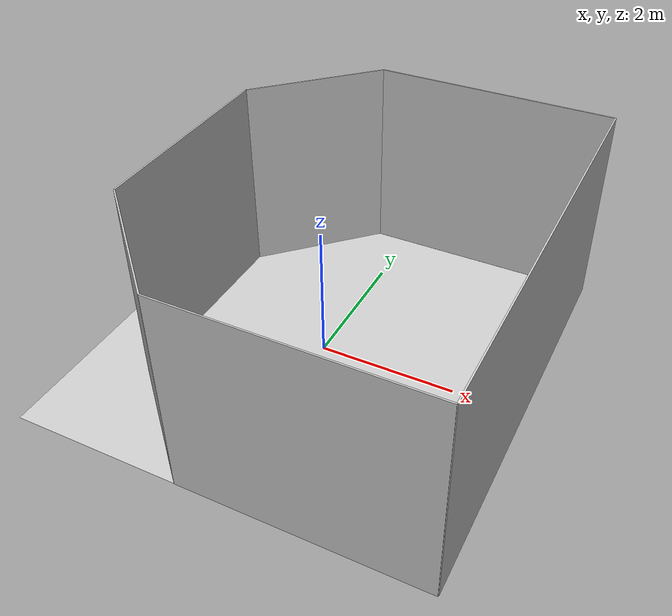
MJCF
<mujoco model="multi_table_arena">
  <asset>
    <texture builtin="gradient" height="256" rgb1=".9 .9 1." rgb2=".2 .3 .4" type="skybox" width="256"/>
    <texture file="../textures/light-gray-floor-tile.png" type="2d" name="texplane"/>
    <material name="floorplane" reflectance="0.01" shininess="0.0" specular="0.0" texrepeat="2 2" texture="texplane" texuniform="true"/>
    <!-- ceramic table texture and material-->
    <texture file="../textures/ceramic.png" type="cube" name="tex-ceramic"/>
    <material name="table_ceramic" reflectance="0.0" shininess="0.0" specular="0.2" texrepeat="1 1" texture="tex-ceramic" />
    <!-- steel legs -->
    <texture file="../textures/steel-brushed.png" type="cube" name="tex-steel-brushed"/>
    <material name="table_legs_metal" reflectance="0.8" shininess="0.8" texrepeat="1 1" texture="tex-steel-brushed" />
    <!-- plaster walls -->
    <texture file="../textures/light-gray-plaster.png" type="2d" name="tex-light-gray-plaster"/>
    <material name="walls_mat" reflectance="0.0" shininess="0.1" specular="0.1" texrepeat="3 3" texture="tex-light-gray-plaster" texuniform="true" />
    <!-- added table texture and material for domain randomization -->
    <texture  name="textable" builtin="flat" height="512" width="512" rgb1="0.5 0.5 0.5" rgb2="0.5 0.5 0.5"/>
    <material name="table_mat" texture="textable" />

  </asset>
  <worldbody>
    <!-- Floor -->
    <geom condim="3" group="1" material="floorplane" name="floor" pos="0 0 0" size="3 3 .125" type="plane"/>
    <!-- Walls (visual only) -->
    <geom pos="-1.25 2.25 1.5" quat="0.6532815 0.6532815 0.2705981 0.2705981" size="1.06 1.5 0.01" type="box" conaffinity="0" contype="0" group="1" name="wall_leftcorner_visual" material="walls_mat"/>
    <geom pos="-1.25 -2.25 1.5" quat="0.6532815 0.6532815 -0.2705981 -0.2705981" size="1.06 1.5 0.01" type="box" conaffinity="0" contype="0" group="1" name="wall_rightcorner_visual" material="walls_mat"/>
    <geom pos="1.25 3 1.5" quat="0.7071 0.7071 0 0" size="1.75 1.5 0.01" type="box" conaffinity="0" contype="0" group="1" name="wall_left_visual" material="walls_mat"/>
    <geom pos="1.25 -3 1.5" quat="0.7071 -0.7071 0 0" size="1.75 1.5 0.01" type="box" conaffinity="0" contype="0" group="1" name="wall_right_visual" material="walls_mat"/>
    <geom pos="-2 0 1.5" quat="0.5 0.5 0.5 0.5" size="1.5 1.5 0.01" type="box" conaffinity="0" contype="0" group="1" name="wall_rear_visual" material="walls_mat"/>
    <geom pos="3 0 1.5" quat="0.5 0.5 -0.5 -0.5" size="3 1.5 0.01" type="box" conaffinity="0" contype="0" group="1" name="wall_front_visual" material="walls_mat"/>
    <!-- Tables will be procedurally generated -->

    <light name="light1" diffuse=".8 .8 .8" dir="0 -.15 -1" directional="false" pos="1 1 4.0" specular="0.3 0.3 0.3" castshadow="false"/>
    <light name="light2" diffuse=".8 .8 .8" dir="0 -.15 -1" directional="false" pos="-3. -3. 4.0" specular="0.3 0.3 0.3" castshadow="false"/>
    <!-- front view -->
    <camera mode="fixed" name="frontview" pos="1.6 0 1.45" quat="0.56 0.43 0.43 0.56"/>
    <!-- bird view -->
    <camera mode="fixed" name="birdview" pos="-0.2 0 3.0" quat="0.7071 0 0 0.7071"/>
    <!-- agent view -->
    <camera mode="fixed" name="agentview" pos="0.5 0 1.35" quat="0.653 0.271 0.271 0.653"/>
    <!-- side view -->
    <camera mode="fixed" name="sideview" pos="-0.05651774593317116 1.2761224129427358 1.4879572214102434" quat="0.009905065491771751 0.006877963156909582 0.5912228352893879 0.806418094001364" />
    <!-- Additional camera views from JSON -->
    <camera mode="fixed" name="true_ex_01" pos="-0.249761 -0.427006 1.355835" quat="0.893624 0.364731 -0.098835 -0.242155"/>
    <camera mode="fixed" name="true_ex_02" pos="0.308901 0.068559 1.493616" quat="0.610849 0.136115 0.169638 0.761288"/>
    <camera mode="fixed" name="true_ex_03" pos="0.438611 0.041335 1.408342" quat="0.636486 0.219027 0.240639 0.699289"/>
    <camera mode="fixed" name="true_ex_04" pos="0.483191 -0.025819 1.36729" quat="0.67508 0.266358 0.252505 0.63997"/>
    <camera mode="fixed" name="true_ex_05" pos="0.521853 -0.10077 1.312329" quat="0.701061 0.321421 0.265292 0.578638"/>
    <camera mode="fixed" name="true_ex_06" pos="0.590582 -0.150768 1.184573" quat="0.676798 0.406967 0.316125 0.525726"/>
    <camera mode="fixed" name="true_ex_07" pos="-0.202204 0.466534 1.340409" quat="-0.186808 -0.079618 0.383907 0.900766"/>

    <camera mode="fixed" name="view_00" pos="0.098103 -0.409149 1.424856" quat="0.945063 0.305082 0.036064 0.111717"/>
    <camera mode="fixed" name="view_01" pos="0.202127 -0.408044 1.395121" quat="0.915911 0.330377 0.077343 0.214419"/>
    <camera mode="fixed" name="view_02" pos="0.047318 -0.481147 1.367716" quat="0.929257 0.366171 0.017962 0.045584"/>
    <camera mode="fixed" name="view_03" pos="0.020398 -0.55868 1.274114" quat="0.893713 0.448267 0.008181 0.01631"/>
    <camera mode="fixed" name="view_04" pos="0.217512 -0.548249 1.223437" quat="0.857712 0.478633 0.091478 0.163929"/>
    <camera mode="fixed" name="view_05" pos="0.25232 -0.338008 1.424009" quat="0.902852 0.292458 0.097121 0.299823"/>
    <camera mode="fixed" name="view_06" pos="0.397262 -0.177139 1.413133" quat="0.794655 0.268602 0.174326 0.515739"/>
    <camera mode="fixed" name="view_07" pos="0.327817 -0.357177 1.366327" quat="0.86649 0.342876 0.133495 0.337357"/>
    <camera mode="fixed" name="view_08" pos="0.398516 -0.372237 1.293858" quat="0.827092 0.396509 0.172212 0.359224"/>
    <camera mode="fixed" name="view_09" pos="0.450426 -0.357643 1.248867" quat="0.795746 0.421549 0.203558 0.384251"/>
    <camera mode="fixed" name="view_10" pos="0.37377 0.026312 1.458662" quat="0.657166 0.181721 0.194963 0.705053"/>
    <camera mode="fixed" name="view_11" pos="0.439411 -0.057715 1.406051" quat="0.710194 0.246453 0.216199 0.623012"/>
    <camera mode="fixed" name="view_12" pos="0.513018 -0.014164 1.33487" quat="0.657873 0.28461 0.276861 0.63996"/>
    <camera mode="fixed" name="view_13" pos="0.535215 -0.102211 1.294459" quat="0.69504 0.332732 0.275202 0.574867"/>
    <camera mode="fixed" name="view_14" pos="0.565061 0.032848 1.263494" quat="0.61051 0.313466 0.332217 0.64703"/>
    <camera mode="fixed" name="view_15" pos="0.288964 0.241368 1.457442" quat="0.408126 0.11357 0.242841 0.872676"/>
    <camera mode="fixed" name="view_16" pos="0.4437 0.164498 1.378091" quat="0.533604 0.203609 0.292637 0.766925"/>
    <camera mode="fixed" name="view_17" pos="0.311193 0.409429 1.333621" quat="0.292867 0.127124 0.377335 0.869303"/>
    <camera mode="fixed" name="view_18" pos="0.461222 0.255303 1.317845" quat="0.462688 0.209221 0.354947 0.784958"/>
    <camera mode="fixed" name="view_19" pos="0.427094 0.393179 1.239855" quat="0.353481 0.190802 0.434993 0.805871"/>
    <camera mode="fixed" name="view_20" pos="0.207138 0.336611 1.444322" quat="0.261088 0.077459 0.273672 0.922462"/>
    <camera mode="fixed" name="view_21" pos="0.268679 0.387125 1.380048" quat="0.279317 0.105917 0.338375 0.892337"/>
    <camera mode="fixed" name="view_22" pos="0.227941 0.453527 1.341426" quat="0.212376 0.090264 0.380598 0.895485"/>
    <camera mode="fixed" name="view_23" pos="0.228469 0.494941 1.294126" quat="0.193491 0.092701 0.422009 0.880838"/>
    <camera mode="fixed" name="view_24" pos="0.1605 0.548211 1.255252" quat="0.125781 0.065738 0.458505 0.877286"/>
    <!-- Selected views from camera_views_180d_test.json with renamed cameras -->
    <!-- view_09 -> in_01 -->
    <camera mode="fixed" name="in_01" pos="0.191342 -0.46194 1.35" quat="0.905873 0.375944 0.07478 0.180189"/>

    <!-- view_15 -> in_02 -->
    <camera mode="fixed" name="in_02" pos="0.380203 -0.324724 1.35" quat="0.838779 0.3481 0.160476 0.386683"/>
    <!-- in_03 -->
    <camera mode="fixed" name="in_03" pos="0.5 0 1.35" quat="0.653 0.271 0.271 0.653"/>
    <!-- in_04 -->
    <camera mode="fixed" name="in_04" pos="0.380203 0.324724 1.35" quat="0.386683 0.160476 0.3481 0.838779"/>

    <!-- in_05 -->
    <camera mode="fixed" name="in_05" pos="0.191342 0.46194 1.35" quat="0.180189 0.07478 0.375944 0.905873"/>

    <!-- Extrapolation views from robomimic/test.json -->
    <!-- view_00 -> extrapolation_01 -->
    <camera mode="fixed" name="ex_01" pos="-0.404508 -0.293893 1.35" quat="0.822951 0.341531 -0.174019 -0.419315"/>

    <!-- view_01 -> ex_02 -->
    <camera mode="fixed" name="ex_02" pos="-0.293893 -0.404508 1.35" quat="0.878415 0.364549 -0.118449 -0.285414"/>

    <!-- view_15 -> ex_03 -->
    <camera mode="fixed" name="ex_03" pos="-0.293893 0.404508 1.35" quat="-0.285414 -0.118449 0.364549 0.878415"/>

    <!-- view_16 -> ex_04 -->
    <camera mode="fixed" name="ex_04" pos="-0.404508 0.293893 1.35" quat="-0.419315 -0.174019 0.341531 0.822951"/>

        <!-- Selected views from test_hard.json -->
    <!-- view_00 -> ex_hard_01 -->
    <camera mode="fixed" name="ex_hard_01" pos="-0.139232 -0.335862 1.46596" quat="0.94782 0.252035 -0.050171 -0.188675"/>

    <!-- view_02 -> ex_hard_02 -->
    <camera mode="fixed" name="ex_hard_02" pos="-0.218463 -0.372609 1.41569" quat="0.915148 0.306325 -0.083179 -0.248497"/>

    <!-- view_17 -> in_hard_01 -->
    <camera mode="fixed" name="in_hard_01" pos="0.485554 -0.169442 1.333621" quat="0.747898 0.324637 0.230549 0.531138"/>

    <!-- view_23 -> in_hard_02 -->
    <camera mode="fixed" name="in_hard_02" pos="0.448118 -0.053264 1.398852" quat="0.704355 0.250796 0.222752 0.625593"/>

    <!-- view_27 -> in_hard_03 -->
    <camera mode="fixed" name="in_hard_03" pos="0.62488 0.038486 1.146057" quat="0.575783 0.37113 0.394691 0.612336"/>

    <!-- view_33 -> in_hard_04 -->
    <camera mode="fixed" name="in_hard_04" pos="0.545544 0.232394 1.217607" quat="0.480176 0.271067 0.410107 0.726475"/>

    <!-- view_43 -> ex_hard_03 -->
    <camera mode="fixed" name="ex_hard_03" pos="-0.178479 0.361669 1.438369" quat="-0.217339 -0.066246 0.283936 0.931534"/>

    <!-- view_48 -> ex_hard_04 -->
    <camera mode="fixed" name="ex_hard_04" pos="-0.197572 0.579753 1.178122" quat="-0.139659 -0.084985 0.512845 0.842771"/>

    <!-- view_25 -> in_hard_05 -->
    <camera mode="fixed" name="in_hard_05" pos="0.531457 0.16152 1.279426" quat="0.533551 0.264442 0.356754 0.719805"/>
<!-- agentview_mug_1 cameras -->
    <camera mode="fixed" name="agentview_mug_1_00" pos="0.742039 -0.012952 1.532522" quat="0.65139 0.290546 0.285519 0.640119"/>
    <camera mode="fixed" name="agentview_mug_1_01" pos="0.752963 -0.013143 1.519473" quat="0.64883 0.29622 0.291094 0.637603"/>
    <camera mode="fixed" name="agentview_mug_1_02" pos="0.763658 -0.01333 1.506236" quat="0.64622 0.30187 0.296647 0.635039"/>
    <camera mode="fixed" name="agentview_mug_1_03" pos="0.742152 0.0 1.532522" quat="0.645779 0.288044 0.288044 0.645779"/>
    <camera mode="fixed" name="agentview_mug_1_04" pos="0.753078 0.0 1.519473" quat="0.643241 0.293668 0.293668 0.643241"/>
    <camera mode="fixed" name="agentview_mug_1_05" pos="0.763775 0.0 1.506236" quat="0.640654 0.29927 0.29927 0.640654"/>
    <camera mode="fixed" name="agentview_mug_1_06" pos="0.742039 0.012952 1.532522" quat="0.640119 0.285519 0.290546 0.65139"/>
    <camera mode="fixed" name="agentview_mug_1_07" pos="0.752963 0.013143 1.519473" quat="0.637603 0.291094 0.29622 0.64883"/>
    <camera mode="fixed" name="agentview_mug_1_08" pos="0.763658 0.01333 1.506236" quat="0.635039 0.296647 0.30187 0.64622"/>
    <!-- agentview_mug_2 cameras -->
    <camera mode="fixed" name="agentview_mug_2_00" pos="0.730555 -0.025512 1.545378" quat="0.659483 0.287283 0.277426 0.636856"/>
    <camera mode="fixed" name="agentview_mug_2_01" pos="0.752619 -0.026282 1.519473" quat="0.654369 0.298749 0.288498 0.631917"/>
    <camera mode="fixed" name="agentview_mug_2_02" pos="0.773767 -0.027021 1.492814" quat="0.649056 0.310123 0.299483 0.626786"/>
    <camera mode="fixed" name="agentview_mug_2_03" pos="0.731 0.0 1.545378" quat="0.648268 0.282397 0.282397 0.648268"/>
    <camera mode="fixed" name="agentview_mug_2_04" pos="0.753078 0.0 1.519473" quat="0.643241 0.293668 0.293668 0.643241"/>
    <camera mode="fixed" name="agentview_mug_2_05" pos="0.774239 0.0 1.492814" quat="0.638018 0.304849 0.304849 0.638018"/>
    <camera mode="fixed" name="agentview_mug_2_06" pos="0.730555 0.025512 1.545378" quat="0.636856 0.277426 0.287283 0.659483"/>
    <camera mode="fixed" name="agentview_mug_2_07" pos="0.752619 0.026282 1.519473" quat="0.631917 0.288498 0.298749 0.654369"/>
    <camera mode="fixed" name="agentview_mug_2_08" pos="0.773767 0.027021 1.492814" quat="0.626786 0.299483 0.310123 0.649056"/>

    <!-- agentview_mug_3 cameras -->
    <camera mode="fixed" name="agentview_mug_3_00" pos="0.718639 -0.037662 1.558037" quat="0.667519 0.283878 0.269391 0.633451"/>
    <camera mode="fixed" name="agentview_mug_3_01" pos="0.752046 -0.039413 1.519473" quat="0.659859 0.301255 0.28588 0.626183"/>
    <camera mode="fixed" name="agentview_mug_3_02" pos="0.783392 -0.041056 1.479211" quat="0.651747 0.318425 0.302174 0.618485"/>
    <camera mode="fixed" name="agentview_mug_3_03" pos="0.719625 0.0 1.558037" quat="0.650708 0.276729 0.276729 0.650708"/>
    <camera mode="fixed" name="agentview_mug_3_04" pos="0.753078 0.0 1.519473" quat="0.643241 0.293668 0.293668 0.643241"/>
    <camera mode="fixed" name="agentview_mug_3_05" pos="0.784467 0.0 1.479211" quat="0.635333 0.310405 0.310405 0.635333"/>
    <camera mode="fixed" name="agentview_mug_3_06" pos="0.718639 0.037662 1.558037" quat="0.633451 0.269391 0.283878 0.667519"/>
    <camera mode="fixed" name="agentview_mug_3_07" pos="0.752046 0.039413 1.519473" quat="0.626183 0.28588 0.301255 0.659859"/>
    <camera mode="fixed" name="agentview_mug_3_08" pos="0.783392 0.041056 1.479211" quat="0.618485 0.302174 0.318425 0.651747"/>

    <!-- agentview_mug_5 cameras -->
    <camera mode="fixed" name="agentview_mug_5_00" pos="0.693572 -0.06068 1.582751" quat="0.683404 0.276652 0.253505 0.626225"/>
    <camera mode="fixed" name="agentview_mug_5_01" pos="0.750212 -0.065635 1.519473" quat="0.670687 0.306198 0.280579 0.614571"/>
    <camera mode="fixed" name="agentview_mug_5_02" pos="0.801143 -0.070091 1.451481" quat="0.656692 0.335162 0.307119 0.601747"/>
    <camera mode="fixed" name="agentview_mug_5_03" pos="0.696222 0.0 1.582751" quat="0.655438 0.265331 0.265331 0.655438"/>
    <camera mode="fixed" name="agentview_mug_5_04" pos="0.753078 0.0 1.519473" quat="0.643241 0.293668 0.293668 0.643241"/>
    <camera mode="fixed" name="agentview_mug_5_05" pos="0.804203 0.0 1.451481" quat="0.629819 0.321446 0.321446 0.629819"/>
    <camera mode="fixed" name="agentview_mug_5_06" pos="0.693572 0.06068 1.582751" quat="0.626225 0.253505 0.276652 0.683404"/>
    <camera mode="fixed" name="agentview_mug_5_07" pos="0.750212 0.065635 1.519473" quat="0.614571 0.280579 0.306198 0.670687"/>
    <camera mode="fixed" name="agentview_mug_5_08" pos="0.801143 0.070091 1.451481" quat="0.601747 0.307119 0.335162 0.656692"/>

  <!-- agentview_1 cameras -->
    <camera mode="fixed" name="agentview_1_00" pos="0.491995 -0.008588 1.358658" quat="0.661133 0.267636 0.263006 0.649694"/>
    <camera mode="fixed" name="agentview_1_01" pos="0.499924 -0.008726 1.35" quat="0.658772 0.273396 0.268665 0.647374"/>
    <camera mode="fixed" name="agentview_1_02" pos="0.5077 -0.008862 1.341205" quat="0.656362 0.279134 0.274304 0.645005"/>
    <camera mode="fixed" name="agentview_1_03" pos="0.49207 0.0 1.358658" quat="0.655438 0.265331 0.265331 0.655438"/>
    <camera mode="fixed" name="agentview_1_04" pos="0.5 0.0 1.35" quat="0.653098 0.271041 0.271041 0.653098"/>
    <camera mode="fixed" name="agentview_1_05" pos="0.507777 0.0 1.341205" quat="0.650708 0.27673 0.27673 0.650708"/>
    <camera mode="fixed" name="agentview_1_06" pos="0.491995 0.008588 1.358658" quat="0.649694 0.263006 0.267636 0.661133"/>
    <camera mode="fixed" name="agentview_1_07" pos="0.499924 0.008726 1.35" quat="0.647374 0.268665 0.273396 0.658772"/>
    <camera mode="fixed" name="agentview_1_08" pos="0.5077 0.008862 1.341205" quat="0.645005 0.274304 0.279134 0.656362"/>

  <!-- agentview_2 cameras -->
    <camera mode="fixed" name="agentview_2_00" pos="0.483696 -0.016891 1.367176" quat="0.669108 0.264092 0.255031 0.64615"/>
    <camera mode="fixed" name="agentview_2_01" pos="0.499695 -0.01745 1.35" quat="0.664397 0.27573 0.266269 0.6416"/>
    <camera mode="fixed" name="agentview_2_02" pos="0.515086 -0.017987 1.332276" quat="0.659483 0.287283 0.277426 0.636856"/>
    <camera mode="fixed" name="agentview_2_03" pos="0.483991 0.0 1.367176" quat="0.657729 0.259601 0.259601 0.657729"/>
    <camera mode="fixed" name="agentview_2_04" pos="0.5 0.0 1.35" quat="0.653098 0.271041 0.271041 0.653098"/>
    <camera mode="fixed" name="agentview_2_05" pos="0.5154 0.0 1.332276" quat="0.648268 0.282398 0.282398 0.648268"/>
    <camera mode="fixed" name="agentview_2_06" pos="0.483696 0.016891 1.367176" quat="0.64615 0.255031 0.264092 0.669108"/>
    <camera mode="fixed" name="agentview_2_07" pos="0.499695 0.01745 1.35" quat="0.6416 0.266269 0.27573 0.664397"/>
    <camera mode="fixed" name="agentview_2_08" pos="0.515086 0.017987 1.332276" quat="0.636856 0.277426 0.287283 0.659483"/>
    <!-- agentview_5 cameras -->
    <!-- agentview_3 cameras -->
    <camera mode="fixed" name="agentview_3_00" pos="0.475112 -0.0249 1.375551" quat="0.677019 0.26041 0.24712 0.642467"/>
    <camera mode="fixed" name="agentview_3_01" pos="0.499315 -0.026168 1.35" quat="0.66997 0.278043 0.263853 0.635778"/>
    <camera mode="fixed" name="agentview_3_02" pos="0.522149 -0.027365 1.323215" quat="0.662462 0.295485 0.280405 0.628653"/>
    <camera mode="fixed" name="agentview_3_03" pos="0.475764 0.0 1.375551" quat="0.659969 0.253852 0.253852 0.659969"/>
    <camera mode="fixed" name="agentview_3_04" pos="0.5 0.0 1.35" quat="0.653098 0.271041 0.271041 0.653098"/>
    <camera mode="fixed" name="agentview_3_05" pos="0.522866 0.0 1.323215" quat="0.645779 0.288044 0.288044 0.645779"/>
    <camera mode="fixed" name="agentview_3_06" pos="0.475112 0.0249 1.375551" quat="0.642467 0.24712 0.26041 0.677019"/>
    <camera mode="fixed" name="agentview_3_07" pos="0.499315 0.026168 1.35" quat="0.635778 0.263853 0.278043 0.66997"/>
    <camera mode="fixed" name="agentview_3_08" pos="0.522149 0.027365 1.323215" quat="0.628653 0.280405 0.295485 0.662462"/>

    <camera mode="fixed" name="agentview_5_00" pos="0.457131 -0.039994 1.391865" quat="0.692643 0.252633 0.231496 0.63469"/>
    <camera mode="fixed" name="agentview_5_01" pos="0.498097 -0.043578 1.35" quat="0.680964 0.282605 0.25896 0.623989"/>
    <camera mode="fixed" name="agentview_5_02" pos="0.535273 -0.04683 1.30471" quat="0.667989 0.31204 0.285932 0.612099"/>
    <camera mode="fixed" name="agentview_5_03" pos="0.458877 0.0 1.391865" quat="0.664299 0.242295 0.242295 0.664299"/>
    <camera mode="fixed" name="agentview_5_04" pos="0.5 0.0 1.35" quat="0.653098 0.271041 0.271041 0.653098"/>
    <camera mode="fixed" name="agentview_5_05" pos="0.537317 0.0 1.30471" quat="0.640654 0.29927 0.29927 0.640654"/>
    <camera mode="fixed" name="agentview_5_06" pos="0.457131 0.039994 1.391865" quat="0.63469 0.231496 0.252633 0.692643"/>
    <camera mode="fixed" name="agentview_5_07" pos="0.498097 0.043578 1.35" quat="0.623989 0.25896 0.282605 0.680964"/>
    <camera mode="fixed" name="agentview_5_08" pos="0.535273 0.04683 1.30471" quat="0.612099 0.285932 0.31204 0.667989"/>

  <!-- view08_1 cameras -->
    <camera mode="fixed" name="view08_1_00" pos="0.385025 -0.379014 1.300753" quat="0.831697 0.394784 0.161549 0.355426"/>
    <camera mode="fixed" name="view08_1_01" pos="0.391959 -0.379135 1.293858" quat="0.830196 0.397997 0.168745 0.351993"/>
    <camera mode="fixed" name="view08_1_02" pos="0.398771 -0.379254 1.286843" quat="0.828631 0.401179 0.175929 0.348532"/>
    <camera mode="fixed" name="view08_1_03" pos="0.391582 -0.372237 1.300753" quat="0.828564 0.393359 0.164988 0.362671"/>
    <camera mode="fixed" name="view08_1_04" pos="0.398516 -0.372237 1.293858" quat="0.827092 0.396509 0.172212 0.359224"/>
    <camera mode="fixed" name="view08_1_05" pos="0.405329 -0.372237 1.286843" quat="0.825558 0.399629 0.179423 0.35575"/>
    <camera mode="fixed" name="view08_1_06" pos="0.398018 -0.365346 1.300753" quat="0.825367 0.391904 0.168414 0.369887"/>
    <camera mode="fixed" name="view08_1_07" pos="0.404952 -0.365225 1.293858" quat="0.823926 0.394991 0.175666 0.366428"/>
    <camera mode="fixed" name="view08_1_08" pos="0.411764 -0.365106 1.286843" quat="0.822422 0.398048 0.182904 0.362941"/>

    <!-- view08_2 cameras -->
    <camera mode="fixed" name="view08_2_00" pos="0.371303 -0.38543 1.307526" quat="0.836235 0.392873 0.150917 0.351549"/>
    <camera mode="fixed" name="view08_2_01" pos="0.385282 -0.385918 1.293858" quat="0.833236 0.399454 0.165266 0.344735"/>
    <camera mode="fixed" name="view08_2_02" pos="0.398777 -0.386389 1.27971" quat="0.829983 0.405914 0.179564 0.337816"/>
    <camera mode="fixed" name="view08_2_03" pos="0.384528 -0.372237 1.307526" quat="0.829972 0.390179 0.157751 0.366089"/>
    <camera mode="fixed" name="view08_2_04" pos="0.398516 -0.372237 1.293858" quat="0.827092 0.396509 0.172212 0.359224"/>
    <camera mode="fixed" name="view08_2_05" pos="0.412019 -0.372237 1.27971" quat="0.823961 0.402718 0.186621 0.352249"/>
    <camera mode="fixed" name="view08_2_06" pos="0.397284 -0.35859 1.307526" quat="0.823456 0.387367 0.164537 0.380519"/>
    <camera mode="fixed" name="view08_2_07" pos="0.411264 -0.358102 1.293858" quat="0.820697 0.393443 0.179106 0.373604"/>
    <camera mode="fixed" name="view08_2_08" pos="0.424759 -0.357631 1.27971" quat="0.817688 0.3994 0.193621 0.366576"/>

    <!-- view08_3 cameras -->
    <camera mode="fixed" name="view08_3_00" pos="0.357358 -0.391476 1.314175" quat="0.840704 0.390777 0.140321 0.347592"/>
    <camera mode="fixed" name="view08_3_01" pos="0.378488 -0.392584 1.293858" quat="0.836212 0.400881 0.161774 0.33745"/>
    <camera mode="fixed" name="view08_3_02" pos="0.398528 -0.393634 1.272462" quat="0.831148 0.410711 0.183115 0.327077"/>
    <camera mode="fixed" name="view08_3_03" pos="0.377357 -0.372237 1.314175" quat="0.831317 0.38697 0.150502 0.36948"/>
    <camera mode="fixed" name="view08_3_04" pos="0.398516 -0.372237 1.293858" quat="0.827092 0.396509 0.172212 0.359224"/>
    <camera mode="fixed" name="view08_3_05" pos="0.418583 -0.372237 1.272462" quat="0.822301 0.405777 0.193804 0.348722"/>
    <camera mode="fixed" name="view08_3_06" pos="0.396321 -0.351978 1.314175" quat="0.82136 0.382898 0.16058 0.391115"/>
    <camera mode="fixed" name="view08_3_07" pos="0.417451 -0.35087 1.293858" quat="0.817405 0.391865 0.182532 0.380752"/>
    <camera mode="fixed" name="view08_3_08" pos="0.437491 -0.34982 1.272462" quat="0.812891 0.400564 0.204359 0.370127"/>

    <!-- view08_5 cameras -->
    <camera mode="fixed" name="view08_5_00" pos="0.32885 -0.40243 1.327092" quat="0.849432 0.386031 0.119246 0.339449"/>
    <camera mode="fixed" name="view08_5_01" pos="0.364557 -0.405553 1.293858" quat="0.841974 0.403644 0.154753 0.322805"/>
    <camera mode="fixed" name="view08_5_02" pos="0.397243 -0.408413 1.257626" quat="0.832914 0.420487 0.189965 0.305546"/>
    <camera mode="fixed" name="view08_5_03" pos="0.362673 -0.372237 1.327092" quat="0.833817 0.380463 0.135971 0.376178"/>
    <camera mode="fixed" name="view08_5_04" pos="0.398516 -0.372237 1.293858" quat="0.827092 0.396509 0.172212 0.359224"/>
    <camera mode="fixed" name="view08_5_05" pos="0.431327 -0.372237 1.257626" quat="0.818793 0.411801 0.208125 0.341587"/>
    <camera mode="fixed" name="view08_5_06" pos="0.393735 -0.339212 1.327092" quat="0.816615 0.37417 0.152437 0.41219"/>
    <camera mode="fixed" name="view08_5_07" pos="0.429442 -0.336088 1.293858" quat="0.810636 0.38862 0.189344 0.394959"/>
    <camera mode="fixed" name="view08_5_08" pos="0.462128 -0.333228 1.257626" quat="0.803114 0.402331 0.22589 0.376977"/>

    <!-- true_ex_dist cameras -->
    <camera mode="fixed" name="true_ex_dist7" pos="0.518533 0.095356 1.720307" quat="0.616329 0.172358 0.206944 0.740004"/>
    <camera mode="fixed" name="true_ex_dist5" pos="0.544524 0.081768 1.704786" quat="0.625791 0.18476 0.214575 0.726779"/>
    <camera mode="fixed" name="true_ex_dist3" pos="0.559709 0.074085 1.695054" quat="0.630456 0.192134 0.219241 0.719404"/>

    <!-- true_ex_02 cameras -->
    <camera mode="fixed" name="true_ex_02_00" pos="0.290213 0.058466 1.504035" quat="0.626949 0.125563 0.156784 0.75272"/>
    <camera mode="fixed" name="true_ex_02_01" pos="0.311106 0.057737 1.493616" quat="0.624042 0.139055 0.167237 0.750511"/>
    <camera mode="fixed" name="true_ex_02_02" pos="0.331622 0.05702 1.482474" quat="0.620946 0.152504 0.177638 0.748073"/>
    <camera mode="fixed" name="true_ex_02_03" pos="0.287996 0.068559 1.504035" quat="0.613716 0.122808 0.158951 0.763547"/>
    <camera mode="fixed" name="true_ex_02_04" pos="0.308901 0.068559 1.493616" quat="0.610849 0.136115 0.169638 0.761288"/>
    <camera mode="fixed" name="true_ex_02_05" pos="0.32943 0.068559 1.482474" quat="0.607795 0.149381 0.180273 0.758796"/>
    <camera mode="fixed" name="true_ex_02_06" pos="0.285428 0.078568 1.504035" quat="0.600297 0.120015 0.16107 0.774142"/>
    <camera mode="fixed" name="true_ex_02_07" pos="0.30632 0.079298 1.493616" quat="0.59747 0.133134 0.171988 0.771833"/>
    <camera mode="fixed" name="true_ex_02_08" pos="0.326836 0.080014 1.482474" quat="0.59446 0.146212 0.182853 0.769288"/>
  </worldbody>
</mujoco>
